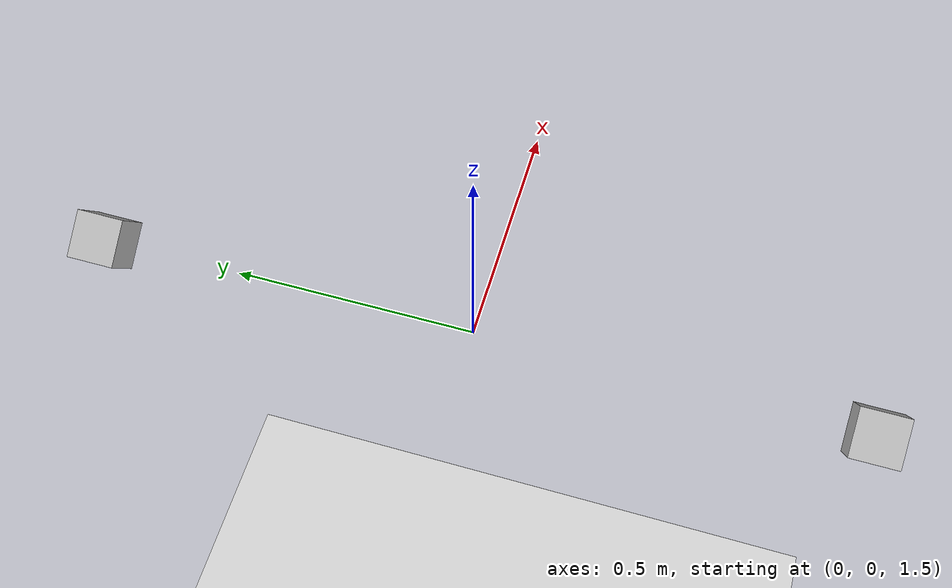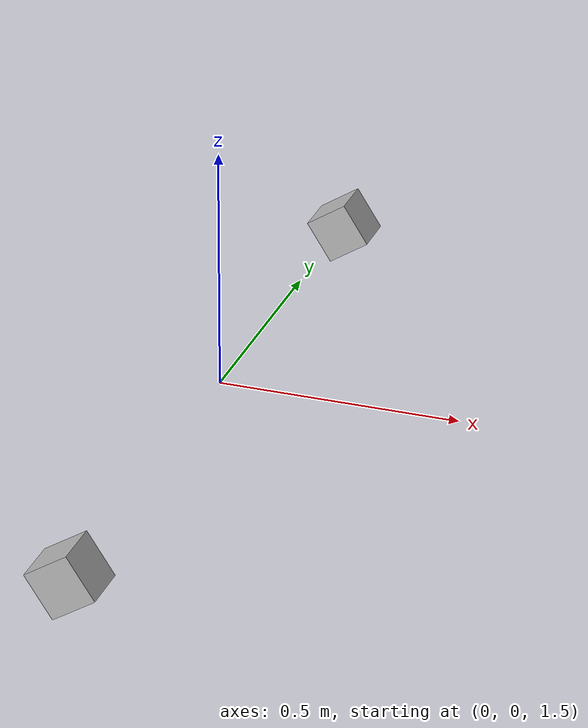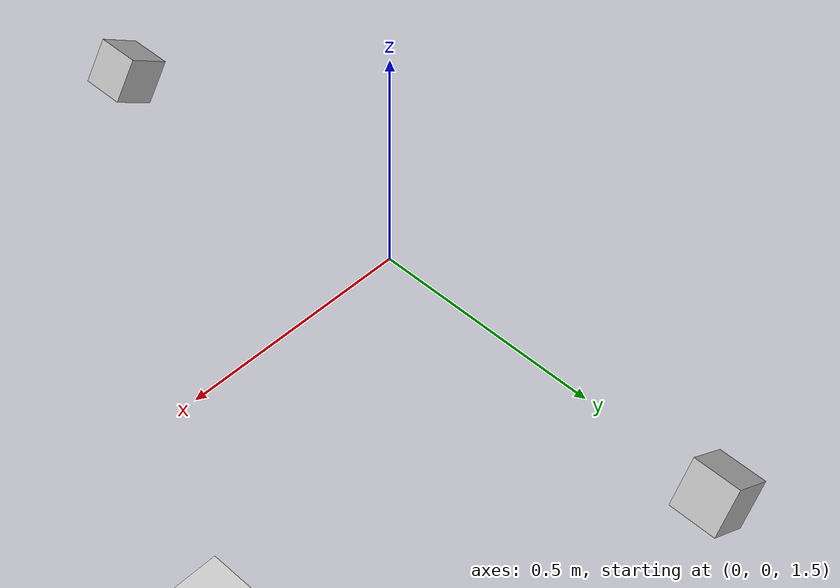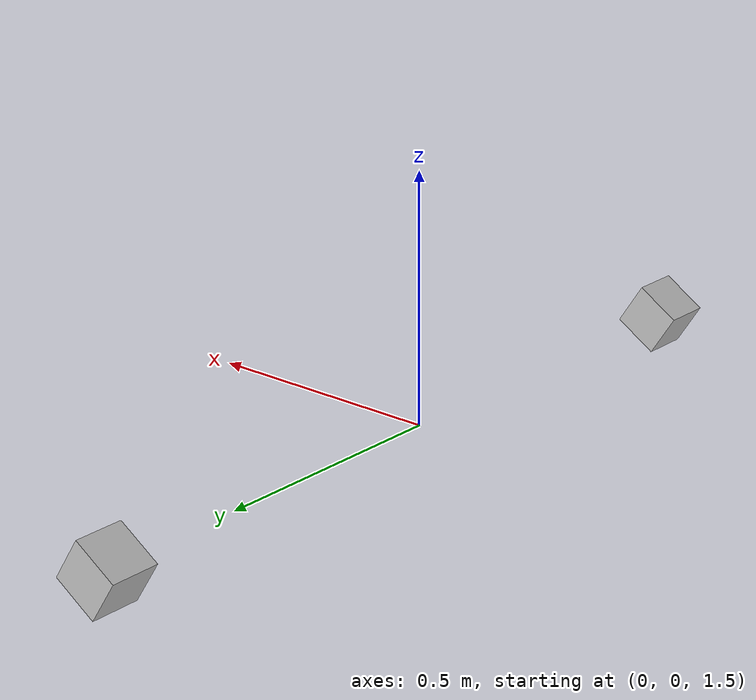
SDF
<?xml version="1.0" ?>
<sdf version="1.4">
  <world name="default">

    <include>
      <uri>model://sun</uri>
    </include>

    <model name="ground_plane">
    <pose>0 0 -0.787 0 0 0</pose>
      <static>true</static>

      <link name="ground_link">
        <collision name="collision">
          <geometry>
            <plane>
              <normal>0 0 1</normal>
              <size>100 100</size>
            </plane>
          </geometry>
          <surface>
            <friction>
              <ode>
                <mu>100</mu>
                <mu2>50</mu2>
              </ode>
            </friction>
          </surface>
        </collision>
        <visual name="visual">
          <cast_shadows>false</cast_shadows>
          <geometry>
            <plane>
              <normal>0 0 1</normal>
              <size>100 100</size>
            </plane>
          </geometry>
          <material>
            <script>
              <uri>file://media/materials/scripts/gazebo.material</uri>
              <name>Gazebo/Grey</name>
            </script>
          </material>
        </visual>
      </link>
    </model>

    <model name='camera_A'>
      <static>true</static>
      <pose>0 0.8 1.5 0 1 0</pose>
      <link name='link'>
        <visual name='visual'>
          <geometry>
            <box>
              <size>0.1 0.1 0.1</size>
            </box>
          </geometry>
        </visual>

        <sensor name="zed_A" type="camera">
            <pose> 0 0 0 0 0 0 </pose>
            <visualize>false</visualize>
            <always_on>true</always_on>
            <update_rate>15</update_rate>
            <camera>
                <horizontal_fov>1.7633</horizontal_fov>
                <image>
                    <format>R8G8B8</format>
                    <width>1280</width>
                    <height>720</height>
                </image>
                <clip>
                    <near>0.02</near>
                    <far>300</far>
                </clip>
                <noise>
                    <type>gaussian</type>
                    <mean>0.0</mean>
                    <stddev>0.007</stddev>
                </noise>
                <distortion>
                    <!-- Values copied from an actual ZED2 camera -->
                    <k1>-0.043693598</k1>
                    <k2>0.0146164996</k2>
                    <p1>-0.006573319</p1>
                    <p2>-0.000216900</p2>
                    <k3>0.000084328</k3>
                    <center>0.5 0.5</center>
                </distortion>
            </camera>
            <plugin name="camera_controller" filename="libgazebo_ros_camera.so">
                <cameraName>zed2_A/zed_node/left_raw</cameraName>
                <imageTopicName>image_raw_color</imageTopicName>
                <cameraInfoTopicName>camera_info</cameraInfoTopicName>
                <distortionK1>-0.043693598</distortionK1>
                <distortionK2>0.0146164996</distortionK2>
                <distortionT1>-0.006573319</distortionT1>
                <distortionT2>-0.000216900</distortionT2>
                <distortionK3>0.000084328</distortionK3>
                <CxPrime>648.5</CxPrime>
                <Cx>648.5</Cx>
                <Cy>366.8340148925781</Cy>
                <hackBaseline>0.0</hackBaseline>
            </plugin>
        </sensor>

      </link>
    </model>

    <model name='camera_B'>
      <static>true</static>
      <pose>0 -0.8 1.5 0 1 0</pose>
      <link name='link'>
        <visual name='visual'>
          <geometry>
            <box>
              <size>0.1 0.1 0.1</size>
            </box>
          </geometry>
        </visual>

        <sensor name="zed_B" type="camera">
            <pose> 0 0 0 0 0 0 </pose>
            <visualize>false</visualize>
            <always_on>true</always_on>
            <update_rate>15</update_rate>
            <camera>
                <horizontal_fov>1.7633</horizontal_fov>
                <image>
                    <format>R8G8B8</format>
                    <width>1280</width>
                    <height>720</height>
                </image>
                <clip>
                    <near>0.02</near>
                    <far>300</far>
                </clip>
                <noise>
                    <type>gaussian</type>
                    <mean>0.0</mean>
                    <stddev>0.007</stddev>
                </noise>
                <distortion>
                    <!-- Values copied from an actual ZED2 camera -->
                    <k1>-0.043693598</k1>
                    <k2>0.0146164996</k2>
                    <p1>-0.006573319</p1>
                    <p2>-0.000216900</p2>
                    <k3>0.000084328</k3>
                    <center>0.5 0.5</center>
                </distortion>
            </camera>
            <plugin name="camera_controller" filename="libgazebo_ros_camera.so">
                <cameraName>zed2_B/zed_node/left_raw</cameraName>
                <imageTopicName>image_raw_color</imageTopicName>
                <cameraInfoTopicName>camera_info</cameraInfoTopicName>
                <distortionK1>-0.043693598</distortionK1>
                <distortionK2>0.0146164996</distortionK2>
                <distortionT1>-0.006573319</distortionT1>
                <distortionT2>-0.000216900</distortionT2>
                <distortionK3>0.000084328</distortionK3>
                <CxPrime>648.5</CxPrime>
                <Cx>648.5</Cx>
                <Cy>366.8340148925781</Cy>
                <hackBaseline>0.0</hackBaseline>
            </plugin>
        </sensor>

      </link>
    </model>

  </world>
</sdf>
